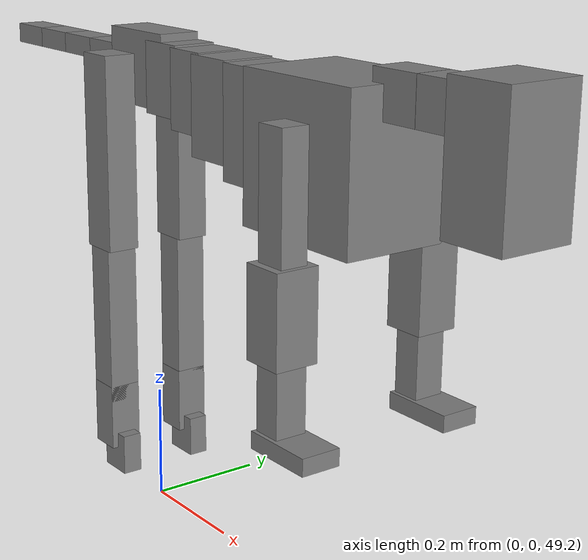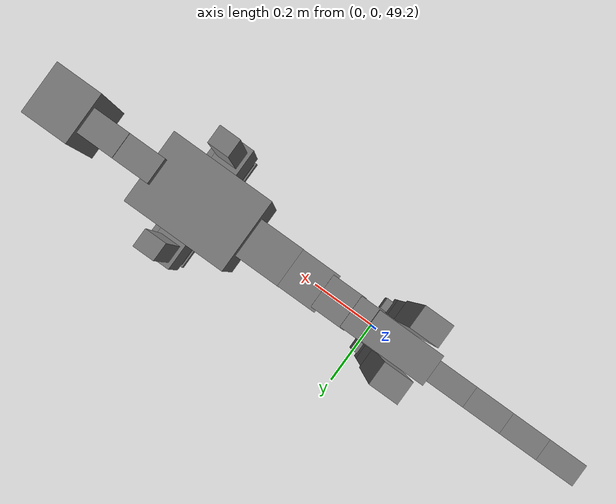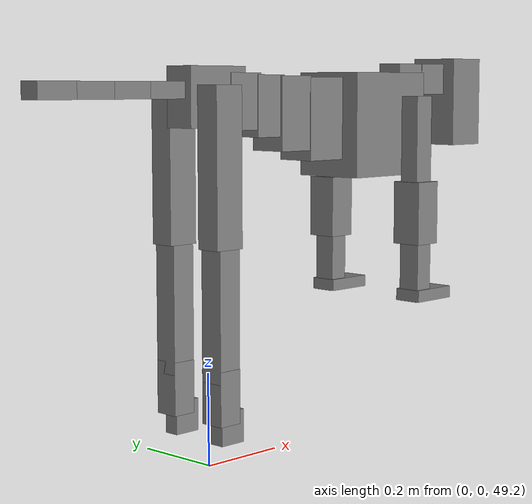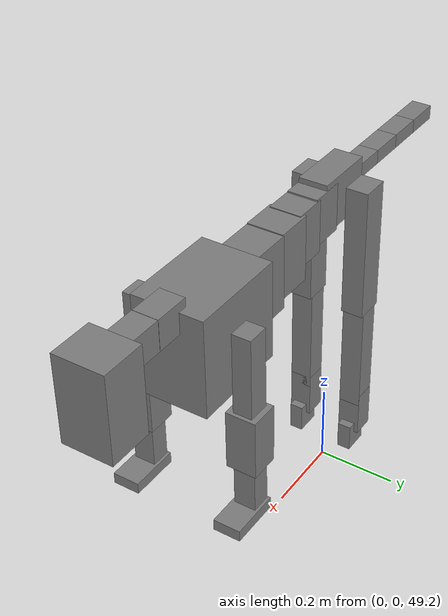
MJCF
<mujoco model="dog">

    <default>
        <joint armature="0.02" stiffness="1" damping="0.2" limited="true"/>
        <geom condim="3" friction="1 0.05 0.05" margin="0.01"/>
        <motor ctrllimited="true" ctrlrange="-1.0 1.0" forcelimited="true" gear="50"/>
    </default>

    <compiler inertiafromgeom="true" angle="radian"/>

    <option timestep="0.016" iterations="50" tolerance="1e-10" solver="Newton" jacobian="dense" cone="pyramidal"/>

    <size nconmax="20000" njmax="60000" nstack="5000000"/>
    <visual>
        <map force="0.1" zfar="30"/>
        <rgba haze="0.15 0.25 0.35 1"/>
        <quality shadowsize="2048"/>
        <global offwidth="800" offheight="800"/>
    </visual>

    <asset>
        <texture type="skybox" builtin="gradient" rgb1="0.3 0.5 0.7" rgb2="0 0 0" width="512" height="512"/>
        <texture name="texplane" type="2d" builtin="checker" rgb1=".2 .3 .4" rgb2=".1 0.15 0.2" width="512" height="512"
                 mark="cross" markrgb=".8 .8 .8"/>
        <texture name="texgeom" type="cube" builtin="flat" mark="cross" width="127" height="1278" rgb1="0.8 0.6 0.4"
                 rgb2="0.8 0.6 0.4" markrgb="1 1 1" random="0.01"/>

        <material name="matplane" reflectance="0.3" texture="texplane" texrepeat="1 1" texuniform="true"/>
        <material name="matgeom" texture="texgeom" texuniform="true" rgba="0.8 0.6 .4 1"/>
    </asset>

    <worldbody>
        <geom name="floor" pos="0 0 0" size="0 0 .25" type="plane" material="matplane" condim="3"/>

        <light directional="false" diffuse=".2 .2 .2" specular="0 0 0" pos="0 0 5" dir="0 0 -1" castshadow="false"/>
        <light mode="targetbodycom" target="torso" directional="false" diffuse=".8 .8 .8" specular="0.3 0.3 0.3"
               pos="0 0 4.0" dir="0 0 -1"/>

        <body name="root" pos="0 0 50">
            <freejoint name="root_1"/>
            <geom type="box" pos="0 0 -0.02" size="0.0774  0.0358  0.063" density="2030"/>

            <body name="spine1" pos="0.054 0 0">
                <joint name="spine1_y" axis="0 1 0" range="0 0.7" limited="true"/>
                <geom type="box" pos="0.02375 0 -0.03" size="0.04375  0.0375  0.05985" density="2030"/>

                <body name="spine2" pos="0.0612 0 0">
                    <joint name="spine2_y" axis="0 1 0" range="-0.15 0.15" limited="true"/>
                    <geom type="box" pos="0.03555  0  -0.04" size="0.04055  0.039  0.06615" density="2030"/>

                    <body name="spine3" pos="0.0730 0 0">
                        <joint name="spine3_y" axis="0 1 0" range="-0.15 0.15" limited="true"/>
                        <geom type="box" pos="0.03555  0  -0.057" size="0.04555  0.0445  0.081" density="2030"/>

                        <body name="spine4" pos="0.0780 0 0">
                            <joint name="spine4_y" axis="0 1 0" range="-0.15 0.15" limited="true"/>
                            <geom type="box" pos="0.05265  0  -0.07" size="0.05265  0.045  0.09135" density="2030"/>

                            <body name="torso" pos="0.1082 0 0">
                                <joint name="torso_y" axis="0 1 0" range="-0.15 0.15" limited="true"/>
                                <geom type="box" pos="0.11925  0  -0.085" size="0.11925  0.085  0.11745"
                                      density="2030"/>

                                <body name="neck1" pos="0.2160  0   0.0180">
                                    <joint name="neck1_y" axis="0 1 0" range="-1.2  -1" limited="true"/>
                                    <geom type="box" pos="0.0423  0  0" size="0.0423  0.03  0.036" density="2325"/>

                                    <body name="neck2" pos="0.0853  0  0">
                                        <joint name="neck2_y" axis="0 1 0" range="0.1  0" limited="true"/>
                                        <geom type="box" pos="0.0423  0  0" size="0.0423  0.03  0.036" density="2325"/>

                                        <body name="head" pos="0.0853  0  0">
                                            <joint name="head_y" axis="0 1 0" range="-0.3  -0.2" limited="true"/>
                                            <geom type="box" pos="0.0531  0  -0.055" size="0.0531  0.06  0.1044"
                                                  density="4030"/>

                                        </body>
                                    </body>
                                </body>

                                <body name="front_shoulder" pos="0.156  0   -0.0480">
                                    <joint name="front_shoulder_y" axis="0 1 0" range="-1 1.5" limited="true"/>
                                    <geom type="box" pos="0 0.13 -0.0836" size="0.0260  0.0222  0.1102" density="1158"/>
                                    <geom type="box" pos="0 -0.13 -0.0836" size="0.0260  0.0222  0.1102"
                                          density="1158"/>

                                    <body name="front_elbow" pos="0  0  -0.1671">
                                        <joint name="front_elbow_y" axis="0 1 0" range="-2 0" limited="true"/>
                                        <geom type="box" pos="0 0.13 -0.0711" size="0.0346  0.0353  0.0711"
                                              density="1081"/>
                                        <geom type="box" pos="0 -0.13 -0.0711" size="0.0346  0.0353  0.0711"
                                              density="1081"/>

                                        <body name="front_wrist" pos="0  0  -0.1422">
                                            <joint name="front_wrist_y" axis="0 1 0" range="-0.2 0" limited="true"/>
                                            <geom type="box" pos="0 0.13 -0.0601" size="0.0230  0.0255  0.0732"
                                                  density="1664"/>
                                            <geom type="box" pos="0 -0.13 -0.0601" size="0.0230  0.0255  0.0732"
                                                  density="1664"/>

                                            <body name="front_finger_end" pos="0  0  -0.1202">
                                                <joint name="front_finger_y" axis="0 1 0" range="-0.4 1"
                                                       limited="true"/>
                                                <geom type="box" pos="0.0322  0.13  0.0015"
                                                      size="0.0591  0.0322  0.0135" density="1515"/>
                                                <geom type="box" pos="0.0322  -0.13  0.0015"
                                                      size="0.0591  0.0322  0.0135" density="1515"/>

                                            </body>

                                        </body>
                                    </body>
                                </body>

                            </body>
                        </body>
                    </body>
                </body>
            </body>

            <body name="back_hip" pos="-0.03 0 -0.018">
                <joint name="back_hip_y" axis="0 1 0" range="-1.5 0.3" limited="true"/>
                <geom type="box" pos="0 0.07 -0.1435" size="0.0353  0.0277  0.1663" density="1154"/>
                <geom type="box" pos="0 -0.07 -0.1435" size="0.0353  0.0277  0.1663" density="1154"/>

                <body name="back_knee" pos="0  0  -0.2869">
                    <joint name="back_knee_y" axis="0 1 0" range="0 2.8" limited="true"/>
                    <geom type="box" pos="0 0.07 -0.1409" size="0.0273  0.0270  0.1565" density="1227"/>
                    <geom type="box" pos="0 -0.07 -0.1409" size="0.0273  0.0270  0.1565" density="1227"/>

                    <body name="back_ankle" pos="0  0  -0.2819">
                        <joint name="back_ankle_y" axis="0 1 0" range="-2.2 0" limited="true"/>
                        <geom type="box" pos="0 0.07 -0.0461" size="0.0273  0.0273  0.0573" density="1284"/>
                        <geom type="box" pos="0 -0.07 -0.0461" size="0.0273  0.0273  0.0573" density="1284"/>

                        <body name="back_toe_end" pos="0  0  -0.0921">
                            <joint name="back_toe_y" axis="0 1 0" range="-0.4 1" limited="true"/>
                            <geom type="box" pos="0.0169  0.07  -0.0201" size="0.0310  0.0169  0.0351" density="1515"/>
                            <geom type="box" pos="0.0169  -0.07  -0.0201" size="0.0310  0.0169  0.0351" density="1515"/>

                        </body>
                    </body>
                </body>
            </body>

            <body name="tail1" pos="-0.074 0 -0.006">
                <joint name="tail1_y" axis="0 1 0" range="-0.2 0.2" limited="true"/>
                <geom type="box" pos="-0.0536  0  0" size="0.045  0.025  0.0175" density="1587"/>

                <body name="tail2" pos="-0.09 0 0">
                    <joint name="tail2_y" axis="0 1 0" range="-0.2 0.2" limited="true"/>
                    <geom type="box" pos="-0.0536  0  0" size="0.045  0.025  0.0175" density="1587"/>

                    <body name="tail3" pos="-0.09 0 0">
                        <joint name="tail3_y" axis="0 1 0" range="-0.2 0.2" limited="true"/>
                        <geom type="box" pos="-0.0536  0  0" size="0.045  0.025  0.0175" density="1587"/>

                        <body name="tail4" pos="-0.09 0 0">
                            <joint name="tail4_y" axis="0 1 0" range="-0.2 0.2" limited="true"/>
                            <geom type="box" pos="-0.0536  0  0" size="0.045  0.025  0.0175" density="1587"/>

                        </body>
                    </body>
                </body>
            </body>
        </body>
    </worldbody>

    <actuator>
        <motor joint="spine1_y" forcerange="-150 150     "/>
        <motor joint="spine2_y" forcerange="-150 150     "/>
        <motor joint="spine3_y" forcerange="-150 150     "/>
        <motor joint="spine4_y" forcerange="-150 150     "/>
        <motor joint="torso_y" forcerange="-150 150     "/>
        <motor joint="neck1_y" forcerange="-100 100       "/>
        <motor joint="neck2_y" forcerange="-100 100       "/>
        <motor joint="head_y" forcerange="-150 150       "/>
        <motor joint="front_shoulder_y" forcerange="-142.96 104.97"/>
        <motor joint="front_elbow_y" forcerange="-188.31 168.60"/>
        <motor joint="front_wrist_y" forcerange="-139.80 64.45"/>
        <motor joint="front_finger_y" forcerange="-77.74 54.12"/>
        <motor joint="back_hip_y" forcerange="-244.24 324.43"/>
        <motor joint="back_knee_y" forcerange="-236.85 355.16"/>
        <motor joint="back_angle_y" forcerange="-105.33 232.01"/>
        <motor joint="back_toe_y" forcerange="-27.76 27.45"/>
        <motor joint="tail1_y" forcerange="-50 50     "/>
        <motor joint="tail2_y" forcerange="-50 50     "/>
        <motor joint="tail3_y" forcerange="-50 50     "/>
        <motor joint="tail4_y" forcerange="-50 50     "/>
    </actuator>
</mujoco>
